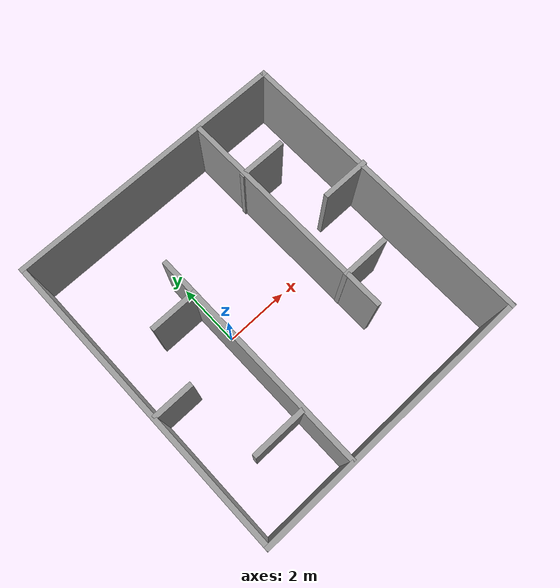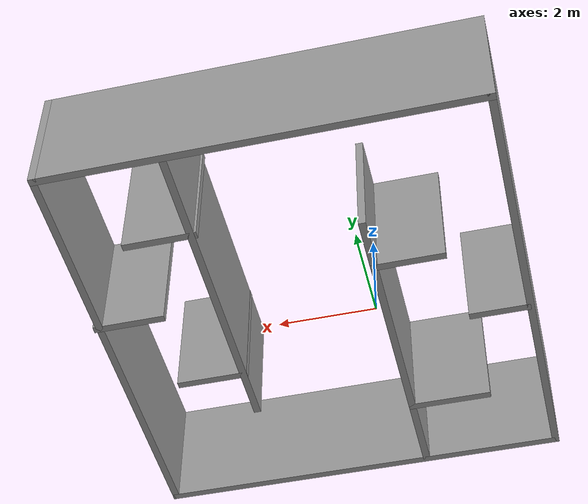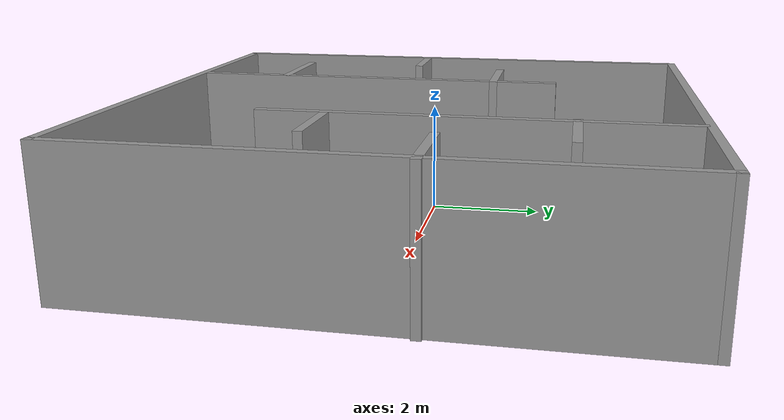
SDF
<?xml version='1.0'?>
<sdf version='1.6'>
  <model name='maze1'>
    <pose frame=''>1.30709 -0.065 0 0 -0 0</pose>
    <link name='Wall_1'>
      <collision name='Wall_1_Collision'>
        <geometry>
          <box>
            <size>8.75 0.15 2.5</size>
          </box>
        </geometry>
        <pose frame=''>0 0 1.25 0 -0 0</pose>
      </collision>
      <visual name='Wall_1_Visual'>
        <pose frame=''>0 0 1.25 0 -0 0</pose>
        <geometry>
          <box>
            <size>8.75 0.15 2.5</size>
          </box>
        </geometry>
        <material>
          <script>
            <uri>file://media/materials/scripts/gazebo.material</uri>
            <name>Gazebo/Grey</name>
          </script>
          <ambient>1 1 1 1</ambient>
        </material>
        <meta>
          <layer>0</layer>
        </meta>
      </visual>
      <pose frame=''>-0.027092 -4.675 0 0 -0 0</pose>
    </link>
    <link name='Wall_10'>
      <collision name='Wall_10_Collision'>
        <geometry>
          <box>
            <size>7 0.15 2.5</size>
          </box>
        </geometry>
        <pose frame=''>0 0 1.25 0 -0 0</pose>
      </collision>
      <visual name='Wall_10_Visual'>
        <pose frame=''>0 0 1.25 0 -0 0</pose>
        <geometry>
          <box>
            <size>7 0.15 2.5</size>
          </box>
        </geometry>
        <material>
          <script>
            <uri>file://media/materials/scripts/gazebo.material</uri>
            <name>Gazebo/Grey</name>
          </script>
          <ambient>1 1 1 1</ambient>
        </material>
        <meta>
          <layer>0</layer>
        </meta>
      </visual>
      <pose frame=''>1.77609 1.14885 0 0 -0 -1.5708</pose>
    </link>
    <link name='Wall_12'>
      <collision name='Wall_12_Collision'>
        <geometry>
          <box>
            <size>1.25 0.15 2.5</size>
          </box>
        </geometry>
        <pose frame=''>0 0 1.25 0 -0 0</pose>
      </collision>
      <visual name='Wall_12_Visual'>
        <pose frame=''>0 0 1.25 0 -0 0</pose>
        <geometry>
          <box>
            <size>1.25 0.15 2.5</size>
          </box>
        </geometry>
        <material>
          <script>
            <uri>file://media/materials/scripts/gazebo.material</uri>
            <name>Gazebo/Grey</name>
          </script>
          <ambient>1 1 1 1</ambient>
        </material>
        <meta>
          <layer>0</layer>
        </meta>
      </visual>
      <pose frame=''>-3.70798 -0.575226 0 0 -0 0</pose>
    </link>
    <link name='Wall_14'>
      <collision name='Wall_14_Collision'>
        <geometry>
          <box>
            <size>1.5 0.15 2.5</size>
          </box>
        </geometry>
        <pose frame=''>0 0 1.25 0 -0 0</pose>
      </collision>
      <visual name='Wall_14_Visual'>
        <pose frame=''>0 0 1.25 0 -0 0</pose>
        <geometry>
          <box>
            <size>1.5 0.15 2.5</size>
          </box>
        </geometry>
        <material>
          <script>
            <uri>file://media/materials/scripts/gazebo.material</uri>
            <name>Gazebo/Grey</name>
          </script>
          <ambient>1 1 1 1</ambient>
        </material>
        <meta>
          <layer>0</layer>
        </meta>
      </visual>
      <pose frame=''>-2.15731 1.15454 0 0 -0 3.14159</pose>
    </link>
    <link name='Wall_18'>
      <collision name='Wall_18_Collision'>
        <geometry>
          <box>
            <size>1.75 0.15 2.5</size>
          </box>
        </geometry>
        <pose frame=''>0 0 1.25 0 -0 0</pose>
      </collision>
      <visual name='Wall_18_Visual'>
        <pose frame=''>0 0 1.25 0 -0 0</pose>
        <geometry>
          <box>
            <size>1.75 0.15 2.5</size>
          </box>
        </geometry>
        <material>
          <script>
            <uri>file://media/materials/scripts/gazebo.material</uri>
            <name>Gazebo/Grey</name>
          </script>
          <ambient>1 1 1 1</ambient>
        </material>
        <meta>
          <layer>0</layer>
        </meta>
      </visual>
      <pose frame=''>-2.28529 -2.93184 0 0 -0 3.14159</pose>
    </link>
    <link name='Wall_20'>
      <collision name='Wall_20_Collision'>
        <geometry>
          <box>
            <size>1.5 0.15 2.5</size>
          </box>
        </geometry>
        <pose frame=''>0 0 1.25 0 -0 0</pose>
      </collision>
      <visual name='Wall_20_Visual'>
        <pose frame=''>0 0 1.25 0 -0 0</pose>
        <geometry>
          <box>
            <size>1.5 0.15 2.5</size>
          </box>
        </geometry>
        <material>
          <script>
            <uri>file://media/materials/scripts/gazebo.material</uri>
            <name>Gazebo/Grey</name>
          </script>
          <ambient>1 1 1 1</ambient>
        </material>
        <meta>
          <layer>0</layer>
        </meta>
      </visual>
      <pose frame=''>2.44287 -1.18284 0 0 -0 0</pose>
    </link>
    <link name='Wall_22'>
      <collision name='Wall_22_Collision'>
        <geometry>
          <box>
            <size>1.5 0.15 2.5</size>
          </box>
        </geometry>
        <pose frame=''>0 0 1.25 0 -0 0</pose>
      </collision>
      <visual name='Wall_22_Visual'>
        <pose frame=''>0 0 1.25 0 -0 0</pose>
        <geometry>
          <box>
            <size>1.5 0.15 2.5</size>
          </box>
        </geometry>
        <material>
          <script>
            <uri>file://media/materials/scripts/gazebo.material</uri>
            <name>Gazebo/Grey</name>
          </script>
          <ambient>1 1 1 1</ambient>
        </material>
        <meta>
          <layer>0</layer>
        </meta>
      </visual>
      <pose frame=''>3.65209 0.763536 0 0 -0 3.14159</pose>
    </link>
    <link name='Wall_24'>
      <collision name='Wall_24_Collision'>
        <geometry>
          <box>
            <size>1.5 0.15 2.5</size>
          </box>
        </geometry>
        <pose frame=''>0 0 1.25 0 -0 0</pose>
      </collision>
      <visual name='Wall_24_Visual'>
        <pose frame=''>0 0 1.25 0 -0 0</pose>
        <geometry>
          <box>
            <size>1.5 0.15 2.5</size>
          </box>
        </geometry>
        <material>
          <script>
            <uri>file://media/materials/scripts/gazebo.material</uri>
            <name>Gazebo/Grey</name>
          </script>
          <ambient>1 1 1 1</ambient>
        </material>
        <meta>
          <layer>0</layer>
        </meta>
      </visual>
      <pose frame=''>2.40192 2.7519 0 0 -0 0</pose>
    </link>
    <link name='Wall_4'>
      <collision name='Wall_4_Collision'>
        <geometry>
          <box>
            <size>9.5 0.15 2.5</size>
          </box>
        </geometry>
        <pose frame=''>0 0 1.25 0 -0 0</pose>
      </collision>
      <visual name='Wall_4_Visual'>
        <pose frame=''>0 0 1.25 0 -0 0</pose>
        <geometry>
          <box>
            <size>9.5 0.15 2.5</size>
          </box>
        </geometry>
        <material>
          <script>
            <uri>file://media/materials/scripts/gazebo.material</uri>
            <name>Gazebo/Grey</name>
          </script>
          <ambient>1 1 1 1</ambient>
        </material>
        <meta>
          <layer>0</layer>
        </meta>
      </visual>
      <pose frame=''>4.27291 0 0 0 -0 1.5708</pose>
    </link>
    <link name='Wall_5'>
      <collision name='Wall_5_Collision'>
        <geometry>
          <box>
            <size>8.75 0.15 2.5</size>
          </box>
        </geometry>
        <pose frame=''>0 0 1.25 0 -0 0</pose>
      </collision>
      <visual name='Wall_5_Visual'>
        <pose frame=''>0 0 1.25 0 -0 0</pose>
        <geometry>
          <box>
            <size>8.75 0.15 2.5</size>
          </box>
        </geometry>
        <material>
          <script>
            <uri>file://media/materials/scripts/gazebo.material</uri>
            <name>Gazebo/Grey</name>
          </script>
          <ambient>1 1 1 1</ambient>
        </material>
        <meta>
          <layer>0</layer>
        </meta>
      </visual>
      <pose frame=''>-0.027092 4.675 0 0 -0 3.14159</pose>
    </link>
    <link name='Wall_6'>
      <collision name='Wall_6_Collision'>
        <geometry>
          <box>
            <size>9.5 0.15 2.5</size>
          </box>
        </geometry>
        <pose frame=''>0 0 1.25 0 -0 0</pose>
      </collision>
      <visual name='Wall_6_Visual'>
        <pose frame=''>0 0 1.25 0 -0 0</pose>
        <geometry>
          <box>
            <size>9.5 0.15 2.5</size>
          </box>
        </geometry>
        <material>
          <script>
            <uri>file://media/materials/scripts/gazebo.material</uri>
            <name>Gazebo/Grey</name>
          </script>
          <ambient>1 1 1 1</ambient>
        </material>
        <meta>
          <layer>0</layer>
        </meta>
      </visual>
      <pose frame=''>-4.32709 0 0 0 -0 -1.5708</pose>
    </link>
    <link name='Wall_8'>
      <collision name='Wall_8_Collision'>
        <geometry>
          <box>
            <size>7 0.15 2.5</size>
          </box>
        </geometry>
        <pose frame=''>0 0 1.25 0 -0 0</pose>
      </collision>
      <visual name='Wall_8_Visual'>
        <pose frame=''>0 0 1.25 0 -0 0</pose>
        <geometry>
          <box>
            <size>7 0.15 2.5</size>
          </box>
        </geometry>
        <material>
          <script>
            <uri>file://media/materials/scripts/gazebo.material</uri>
            <name>Gazebo/Grey</name>
          </script>
          <ambient>1 1 1 1</ambient>
        </material>
        <meta>
          <layer>0</layer>
        </meta>
      </visual>
      <pose frame=''>-1.48231 -1.17294 0 0 -0 1.5708</pose>
    </link>
    <static>1</static>
  </model>
</sdf>
